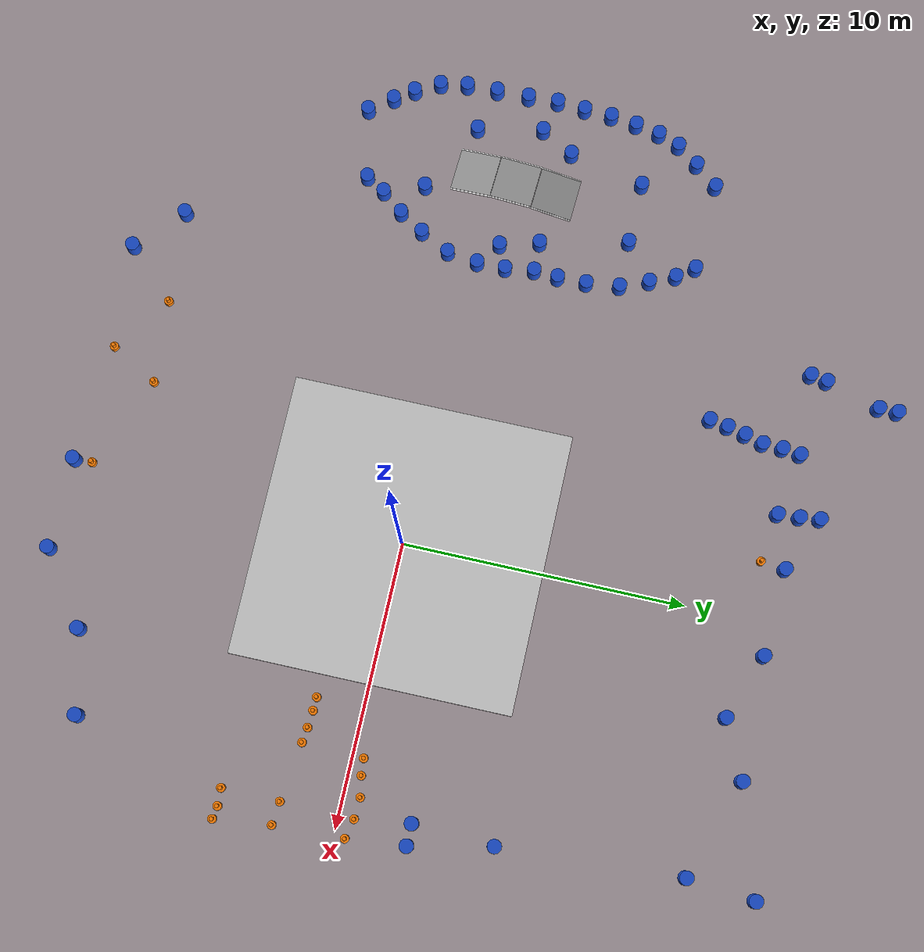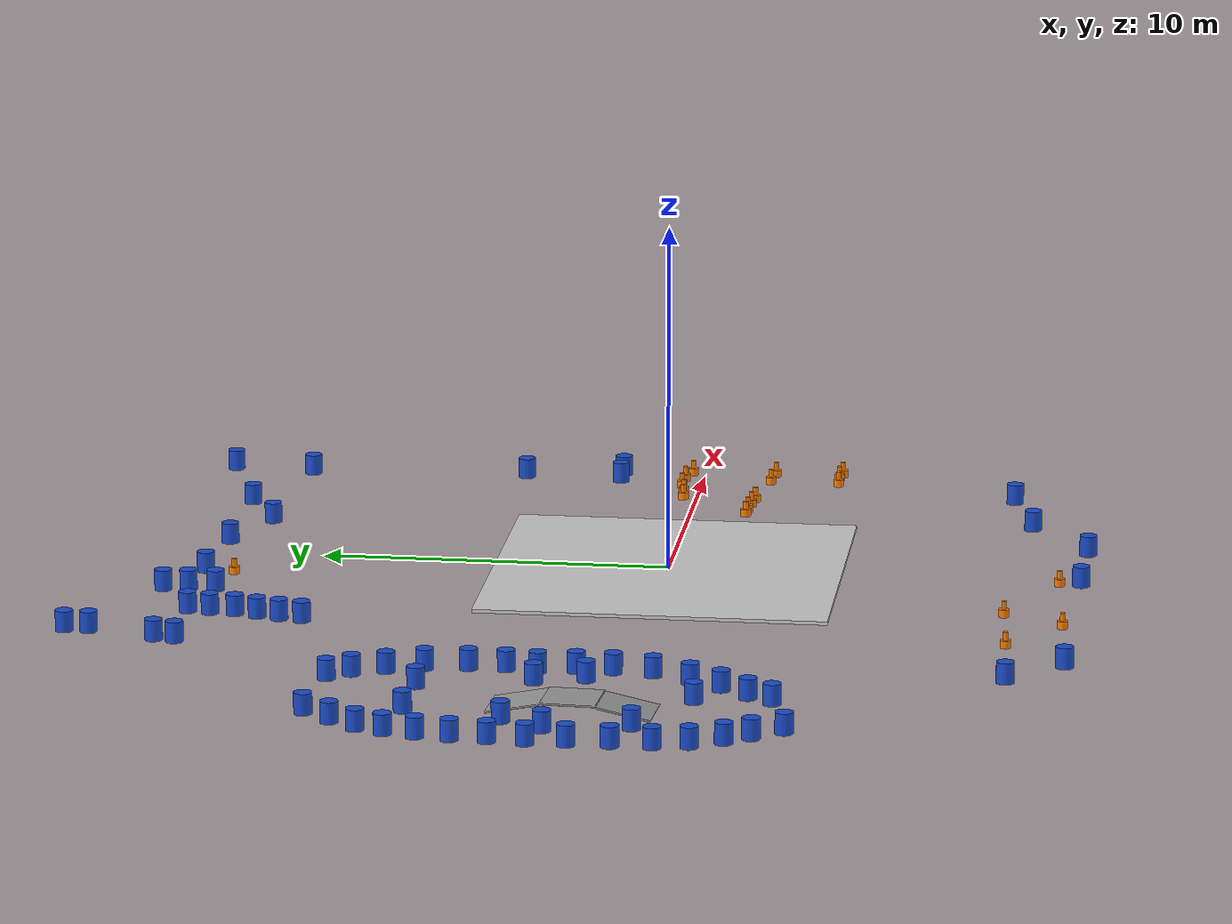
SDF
<?xml version="1.0" ?>
<sdf version="1.9">
  <world name="full_course">
    <!-- System plugins -->
    <plugin name='ignition::gazebo::systems::Physics'           filename='ignition-gazebo-physics-system'/>
    <plugin name='ignition::gazebo::systems::UserCommands'      filename='ignition-gazebo-user-commands-system'/>
    <plugin name='ignition::gazebo::systems::SceneBroadcaster'  filename='ignition-gazebo-scene-broadcaster-system'/>
    <plugin name="ignition::gazebo::systems::Contact"           filename="libignition-gazebo-contact-system.so"/>
    <plugin name="ignition::gazebo::systems::Sensors"           filename="ignition-gazebo-sensors-system"/>
    <plugin name="ignition::gazebo::systems::Imu"               filename="ignition-gazebo-imu-system"/>
    <plugin name="ignition::gazebo::systems::NavSat"            filename="ignition-gazebo-navsat-system" />

    <physics type="ode">
      <max_step_size>0.001</max_step_size>
      <real_time_update_rate>1000</real_time_update_rate>
    </physics>

    <scene>
      <ambient>0.1 0.1 0.1 0.1</ambient>
      <background>0.8 0.8 0.8 1.0</background>
      <grid>true</grid>
    </scene>

    <light type="directional" name="sun">
      <cast_shadows>true</cast_shadows>
      <pose>0 0 10 0 0 0</pose>
      <diffuse>1 1 1 1</diffuse>
      <specular>0.2 0.2 0.2 1</specular>
      <direction>-0.5 0.1 -0.9</direction>
    </light>

    <!-- Course (centered) and bounding tiles so no cliffs-->
    <include> <uri>model://floor</uri> <pose>0 0 0 0 0 0</pose> </include>

    <gui fullscreen='0'>
      <camera name='user_camera'>
        <pose>-5.2 -2.2 14.4 0 1.48 -0.02</pose>
        <view_controller>orbit</view_controller>
      </camera>
    </gui>

    <include>
      <uri>models://barrel</uri>
      <name>barrel</name>
      <pose>-9.96267 -10.2394 0 0 -0 0</pose>
    </include>
    <include>
      <uri>models://barrel</uri>
      <name>barrel_0</name>
      <pose>-8.35724 -11.7564 0 0 -0 0</pose>
    </include>
    <include>
      <uri>models://cone</uri>
      <name>cone</name>
      <pose>-6.68228 -10.0533 0 0 -0 0</pose>
    </include>
    <include>
      <uri>models://cone</uri>
      <name>cone_0</name>
      <pose>-4.65263 -11.516 0 0 -0 0</pose>
    </include>
    <include>
      <uri>models://cone</uri>
      <name>cone_1</name>
      <pose>-3.70712 -9.83601 0 0 -0 0</pose>
    </include>
    <include>
      <uri>models://cone</uri>
      <name>cone_2</name>
      <pose>-0.435755 -11.2176 0 0 -0 0</pose>
    </include>
    <include>
      <uri>models://barrel</uri>
      <name>barrel_1</name>
      <pose>-0.394324 -11.8301 0 0 -0 0</pose>
    </include>
    <include>
      <uri>models://barrel</uri>
      <name>barrel_2</name>
      <pose>2.82763 -11.8807 0 0 -0 0</pose>
    </include>
    <include>
      <uri>models://barrel</uri>
      <name>barrel_3</name>
      <pose>8.19254 -9.46416 0 0 -0 0</pose>
    </include>
    <include>
      <uri>models://barrel</uri>
      <name>barrel_4</name>
      <pose>5.31833 -10.1531 0 0 -0 0</pose>
    </include>
    <include>
      <uri>models://cone</uri>
      <name>cone_3</name>
      <pose>9.48845 -4.08395 0 0 -0 0</pose>
    </include>
    <include>
      <uri>models://cone</uri>
      <name>cone_4</name>
      <pose>10.0991 -4.05546 0 0 -0 0</pose>
    </include>
    <include>
      <uri>models://cone</uri>
      <name>cone_4_1</name>
      <pose>10.5517 -4.12295 0 0 -0 0</pose>
    </include>
    <include>
      <uri>models://cone</uri>
      <name>cone_4_2</name>
      <pose>5.81266 -1.64019 0 0 -0 0</pose>
    </include>
    <include>
      <uri>models://cone</uri>
      <name>cone_4_3</name>
      <pose>6.28362 -1.65373 0 0 -0 0</pose>
    </include>
    <include>
      <uri>models://cone</uri>
      <name>cone_4_4</name>
      <pose>6.87778 -1.70145 0 0 -0 0</pose>
    </include>
    <include>
      <uri>models://cone</uri>
      <name>cone_4_5</name>
      <pose>7.41087 -1.76907 0 0 -0 0</pose>
    </include>
    <include>
      <uri>models://cone</uri>
      <name>cone_4_6</name>
      <pose>9.4985 -2.03657 0 0 -0 0</pose>
    </include>
    <include>
      <uri>models://cone</uri>
      <name>cone_4_7</name>
      <pose>10.313 -2.11659 0 0 -0 0</pose>
    </include>
    <include>
      <uri>models://cone</uri>
      <name>cone_4_8</name>
      <pose>7.47129 0.397816 0 0 -0 0</pose>
    </include>
    <include>
      <uri>models://cone</uri>
      <name>cone_4_9</name>
      <pose>8.05773 0.45268 0 0 -0 0</pose>
    </include>
    <include>
      <uri>models://cone</uri>
      <name>cone_4_10</name>
      <pose>8.77515 0.587541 0 0 -0 0</pose>
    </include>
    <include>
      <uri>models://cone</uri>
      <name>cone_4_11</name>
      <pose>9.52197 0.550067 0 0 -0 0</pose>
    </include>
    <include>
      <uri>models://cone</uri>
      <name>cone_4_12</name>
      <pose>10.2197 0.391293 0 0 -0 0</pose>
    </include>
    <include>
      <uri>models://barrel</uri>
      <name>barrel_5</name>
      <pose>9.24418 2.48043 0 0 -0 0</pose>
    </include>
    <include>
      <uri>models://barrel</uri>
      <name>barrel_6</name>
      <pose>10.0015 2.47843 0 0 -0 0</pose>
    </include>
    <include>
      <uri>models://barrel</uri>
      <name>barrel_6_3</name>
      <pose>9.23198 14.2399 0 0 -0 0</pose>
    </include>
    <include>
      <uri>models://barrel</uri>
      <name>barrel_6_4</name>
      <pose>8.98621 11.8317 0 0 -0 0</pose>
    </include>
    <include>
      <uri>models://barrel</uri>
      <name>barrel_6_5</name>
      <pose>5.4479 13.0605 0 0 -0 0</pose>
    </include>
    <include>
      <uri>models://barrel</uri>
      <name>barrel_6_6</name>
      <pose>3.47212 12.1068 0 0 -0 0</pose>
    </include>
    <include>
      <uri>models://barrel</uri>
      <name>barrel_6_7</name>
      <pose>1.12975 12.9626 0 0 -0 0</pose>
    </include>
    <include>
      <uri>models://barrel</uri>
      <name>barrel_6_1</name>
      <pose>9.37504 5.35546 0 0 -0 0</pose>
    </include>
    <include>
      <uri>models://cone</uri>
      <name>cone_5</name>
      <pose>-2.09508 12.2666 0 0 -0 0</pose>
    </include>
    <include>
      <uri>models://barrel</uri>
      <name>barrel_7</name>
      <pose>-3.94179 13.9701 0 0 -0 0</pose>
    </include>
    <include>
      <uri>models://barrel</uri>
      <name>barrel_7_1</name>
      <pose>-3.8542 13.2631 0 0 -0 0</pose>
    </include>
    <include>
      <uri>models://barrel</uri>
      <name>barrel_7_2</name>
      <pose>-3.80086 12.4937 0 0 -0 0</pose>
    </include>
    <include>
      <uri>models://barrel</uri>
      <name>barrel_7_3</name>
      <pose>-6.04 12.8742 0 0 -0 0</pose>
    </include>
    <include>
      <uri>models://barrel</uri>
      <name>barrel_7_4</name>
      <pose>-6.12178 12.2277 0 0 -0 0</pose>
    </include>
    <include>
      <uri>models://barrel</uri>
      <name>barrel_7_5</name>
      <pose>-6.15044 11.5137 0 0 -0 0</pose>
    </include>
    <include>
      <uri>models://barrel</uri>
      <name>barrel_7_6</name>
      <pose>-6.32941 10.8543 0 0 -0 0</pose>
    </include>
    <include>
      <uri>models://barrel</uri>
      <name>barrel_7_7</name>
      <pose>-6.4755 10.2032 0 0 -0 0</pose>
    </include>
    <include>
      <uri>models://barrel</uri>
      <name>barrel_7_8</name>
      <pose>-8.2807 15.9259 0 0 -0 0</pose>
    </include>
    <include>
      <uri>models://barrel</uri>
      <name>barrel_7_9</name>
      <pose>-6.58798 9.55073 0 0 -0 0</pose>
    </include>
    <include>
      <uri>models://barrel</uri>
      <name>barrel_7_10</name>
      <pose>-8.93905 12.7004 0 0 -0 0</pose>
    </include>
    <include>
      <uri>models://barrel</uri>
      <name>barrel_7_11</name>
      <pose>-8.8356 13.3002 0 0 -0 0</pose>
    </include>
    <include>
      <uri>models://barrel</uri>
      <name>barrel_7_12</name>
      <pose>-8.27275 15.2438 0 0 -0 0</pose>
    </include>
    <include>
      <uri>models://barrel</uri>
      <name>barrel_7_13</name>
      <pose>-1.96288 13.1125 0 0 -0 0</pose>
    </include>
    <include>
      <uri>models://barrel</uri>
      <name>barrel_7_14</name>
      <pose>-11.9011 7.97168 0 0 -0 0</pose>
    </include>
    <include>
      <uri>models://barrel</uri>
      <name>barrel_7_15</name>
      <pose>-11.4382 7.35161 0 0 -0 0</pose>
    </include>
    <include>
      <uri>models://barrel</uri>
      <name>barrel_7_16</name>
      <pose>-11.0577 6.46842 0 0 -0 0</pose>
    </include>
    <include>
      <uri>models://barrel</uri>
      <name>barrel_7_17</name>
      <pose>-10.6541 5.47122 0 0 -0 0</pose>
    </include>
    <include>
      <uri>models://barrel</uri>
      <name>barrel_7_18</name>
      <pose>-10.5154 4.28525 0 0 -0 0</pose>
    </include>
    <include>
      <uri>models://barrel</uri>
      <name>barrel_7_19</name>
      <pose>-10.5012 3.25358 0 0 -0 0</pose>
    </include>
    <include>
      <uri>models://barrel</uri>
      <name>barrel_7_20</name>
      <pose>-10.5668 2.38582 0 0 -0 0</pose>
    </include>
    <include>
      <uri>models://barrel</uri>
      <name>barrel_7_21</name>
      <pose>-10.4225 1.35623 0 0 -0 0</pose>
    </include>
    <include>
      <uri>models://barrel</uri>
      <name>barrel_7_22</name>
      <pose>-10.4184 0.338595 0 0 -0 0</pose>
    </include>
    <include>
      <uri>models://barrel</uri>
      <name>barrel_7_23</name>
      <pose>-10.5732 -0.764844 0 0 -0 0</pose>
    </include>
    <include>
      <uri>models://barrel</uri>
      <name>barrel_7_24</name>
      <pose>-11.1043 -1.83167 0 0 -0 0</pose>
    </include>
    <include>
      <uri>models://barrel</uri>
      <name>barrel_7_25</name>
      <pose>-11.6451 -2.71624 0 0 -0 0</pose>
    </include>
    <include>
      <uri>models://barrel</uri>
      <name>barrel_7_26</name>
      <pose>-12.2752 -3.50023 0 0 -0 0</pose>
    </include>
    <include>
      <uri>models://barrel</uri>
      <name>barrel_7_27</name>
      <pose>-12.6936 -4.19322 0 0 -0 0</pose>
    </include>
    <include>
      <uri>models://barrel</uri>
      <name>barrel_7_28</name>
      <pose>-15.0465 8.06932 0 0 -0 0</pose>
    </include>
    <include>
      <uri>models://barrel</uri>
      <name>barrel_7_29</name>
      <pose>-15.716 7.25742 0 0 -0 0</pose>
    </include>
    <include>
      <uri>models://barrel</uri>
      <name>barrel_7_30</name>
      <pose>-16.2807 6.4781 0 0 -0 0</pose>
    </include>
    <include>
      <uri>models://barrel</uri>
      <name>barrel_7_31</name>
      <pose>-16.5642 5.70083 0 0 -0 0</pose>
    </include>
    <include>
      <uri>models://barrel</uri>
      <name>barrel_7_32</name>
      <pose>-16.731 4.82347 0 0 -0 0</pose>
    </include>
    <include>
      <uri>models://barrel</uri>
      <name>barrel_7_33</name>
      <pose>-16.8522 3.8879 0 0 -0 0</pose>
    </include>
    <include>
      <uri>models://barrel</uri>
      <name>barrel_7_34</name>
      <pose>-16.8955 2.89201 0 0 -0 0</pose>
    </include>
    <include>
      <uri>models://barrel</uri>
      <name>barrel_7_35</name>
      <pose>-16.9698 1.88108 0 0 -0 0</pose>
    </include>
    <include>
      <uri>models://barrel</uri>
      <name>barrel_7_36</name>
      <pose>-16.9293 0.807501 0 0 -0 0</pose>
    </include>
    <include>
      <uri>models://barrel</uri>
      <name>barrel_7_37</name>
      <pose>-16.9081 -0.347231 0 0 -0 0</pose>
    </include>
    <include>
      <uri>models://barrel</uri>
      <name>barrel_7_38</name>
      <pose>-16.876 -1.4528 0 0 -0 0</pose>
    </include>
    <include>
      <uri>models://barrel</uri>
      <name>barrel_7_39</name>
      <pose>-16.7142 -2.40915 0 0 -0 0</pose>
    </include>
    <include>
      <uri>models://barrel</uri>
      <name>barrel_7_40</name>
      <pose>-16.2619 -3.26786 0 0 -0 0</pose>
    </include>
    <include>
      <uri>models://barrel</uri>
      <name>barrel_7_41</name>
      <pose>-15.7945 -3.94161 0 0 -0 0</pose>
    </include>
    <include>
      <uri>models://barrel</uri>
      <name>barrel_7_42</name>
      <pose>-15.1931 -4.75032 0 0 -0 0</pose>
    </include>
    <include>
      <uri>models://barrel</uri>
      <name>barrel_7_43</name>
      <pose>-15.3396 -0.728096 0 0 -0 0</pose>
    </include>
    <include>
      <uri>models://barrel</uri>
      <name>barrel_7_44</name>
      <pose>-12.8114 -2.10477 0 0 -0 0</pose>
    </include>
    <include>
      <uri>models://ramp</uri>
      <name>ramp</name>
      <pose>-13.6752 1.04703 0 0 -0 1.51237</pose>
    </include>
    <include>
      <uri>models://barrel</uri>
      <name>barrel_7_43_1</name>
      <pose>-14.5401 5.47871 0 0 -0 0</pose>
    </include>
    <include>
      <uri>models://barrel</uri>
      <name>barrel_7_43_2</name>
      <pose>-12.3423 5.45713 0 0 -0 0</pose>
    </include>
    <include>
      <uri>models://barrel</uri>
      <name>barrel_7_43_3</name>
      <pose>-15.1315 2.77295 0 0 -0 0</pose>
    </include>
    <include>
      <uri>models://barrel</uri>
      <name>barrel_7_43_4</name>
      <pose>-15.7928 1.59251 0 0 -0 0</pose>
    </include>
    <include>
      <uri>models://barrel</uri>
      <name>barrel_7_43_5</name>
      <pose>-11.6192 2.36049 0 0 -0 0</pose>
    </include>
    <include>
      <uri>models://barrel</uri>
      <name>barrel_7_43_6</name>
      <pose>-11.2388 0.978072 0 0 -0 0</pose>
    </include>

  </world>
</sdf>

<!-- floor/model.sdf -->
<sdf version="1.9">
  <model name="floor">
    <static>true</static>
    <link name="course_floor">
      <collision name="floor_collision">
        <geometry>
          <box>
            <size>10 10 0.1</size>
          </box>
        </geometry>
      </collision>

      <visual name="visual">
        <geometry>
          <box>
            <size>10 10 0.1</size>
          </box>
        </geometry>

        <material>
          <ambient>0.1 0.1 0.1 1</ambient>
          <diffuse>0.8 0.8 0.8 1</diffuse>
          <specular>0.1 0.1 0.1 1</specular>

          <pbr>
            <metal>
              <albedo_map>materials/textures/floor_picture.png</albedo_map>
              <roughness>0.9</roughness>
              <metalness>0.0</metalness>
            </metal>
          </pbr>
        </material>

      </visual>
    </link>
  </model>
</sdf>

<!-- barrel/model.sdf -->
<sdf version="1.8">
  <model name="barrel">
    <static>true</static>
    <link name="link">
      <collision name="collision">
        <geometry>
          <cylinder>
            <radius>0.25</radius>
            <length>0.6</length>
          </cylinder>
        </geometry>
        <pose>0 0 0.3 0 0 0</pose>
      </collision>
      <visual name="visual">
        <geometry>
          <cylinder>
            <radius>0.25</radius>
            <length>0.6</length>
          </cylinder>
        </geometry>
        <pose>0 0 0.3 0 0 0</pose>
        <material>
          <ambient>0.1 0.3 0.8 1</ambient>
          <diffuse>0.1 0.3 0.8 1</diffuse>
          <specular>0.3 0.3 0.3 1</specular>
        </material>
      </visual>
    </link>
  </model>
</sdf>

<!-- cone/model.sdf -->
<sdf version="1.8">
  <model name="cone">
    <static>true</static>
    <link name="link">
      <!-- Base cylinder (wider bottom) -->
      <collision name="collision_base">
        <geometry>
          <cylinder>
            <radius>0.15</radius>
            <length>0.22</length>
          </cylinder>
        </geometry>
        <pose>0 0 0.11 0 0 0</pose>
      </collision>
      <visual name="visual_base">
        <geometry>
          <cylinder>
            <radius>0.15</radius>
            <length>0.22</length>
          </cylinder>
        </geometry>
        <pose>0 0 0.11 0 0 0</pose>
        <material>
          <ambient>1.0 0.5 0.0 1</ambient>
          <diffuse>1.0 0.5 0.0 1</diffuse>
          <specular>0.3 0.3 0.3 1</specular>
        </material>
      </visual>
      <!-- Top cylinder (narrower top) -->
      <collision name="collision_top">
        <geometry>
          <cylinder>
            <radius>0.07</radius>
            <length>0.23</length>
          </cylinder>
        </geometry>
        <pose>0 0 0.335 0 0 0</pose>
      </collision>
      <visual name="visual_top">
        <geometry>
          <cylinder>
            <radius>0.07</radius>
            <length>0.23</length>
          </cylinder>
        </geometry>
        <pose>0 0 0.335 0 0 0</pose>
        <material>
          <ambient>1.0 0.5 0.0 1</ambient>
          <diffuse>1.0 0.5 0.0 1</diffuse>
          <specular>0.3 0.3 0.3 1</specular>
        </material>
      </visual>
    </link>
  </model>
</sdf>

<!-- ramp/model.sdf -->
<sdf version="1.6">
  <model name="ramp">
    <static>true</static>

    <!-- Up slope -->
    <link name="up_slope">
      <pose>-1.5 0 0.125 0 -0.1963 0</pose>
      <collision name="ramp_collision">
        <geometry><box><size>1.5 1.5 0.05</size></box></geometry>
        <surface>
          <friction><ode><mu>1.0</mu><mu2>1.0</mu2></ode></friction>
        </surface>
      </collision>
      <visual name="visual">
        <geometry><box><size>1.5 1.5 0.05</size></box></geometry>
        <material>
          <ambient>0.5 0.5 0.5 1</ambient>
          <diffuse>0.6 0.6 0.6 1</diffuse>
        </material>
      </visual>
    </link>

    <!-- Up slope lane lines -->
    <link name="up_slope_lane_left">
      <pose>-1.5 0.75 0.125 0 -0.1963 0</pose>
      <visual name="visual">
        <geometry><box><size>1.5 0.1 0.01</size></box></geometry>
        <material>
          <ambient>1 1 1 1</ambient>
          <diffuse>1 1 1 1</diffuse>
          <emissive>1 1 1 1</emissive>
        </material>
      </visual>
    </link>
    <link name="up_slope_lane_right">
      <pose>-1.5 -0.75 0.125 0 -0.1963 0</pose>
      <visual name="visual">
        <geometry><box><size>1.5 0.1 0.01</size></box></geometry>
        <material>
          <ambient>1 1 1 1</ambient>
          <diffuse>1 1 1 1</diffuse>
          <emissive>1 1 1 1</emissive>
        </material>
      </visual>
    </link>

    <!-- Flat top -->
    <link name="flat_top">
      <pose>0 0 0.3 0 0 0</pose>
      <collision name="ramp_collision">
        <geometry><box><size>1.5 1.5 0.05</size></box></geometry>
        <surface>
          <friction><ode><mu>1.0</mu><mu2>1.0</mu2></ode></friction>
        </surface>
      </collision>
      <visual name="visual">
        <geometry><box><size>1.5 1.5 0.05</size></box></geometry>
        <material>
          <ambient>0.5 0.5 0.5 1</ambient>
          <diffuse>0.6 0.6 0.6 1</diffuse>
        </material>
      </visual>
    </link>

    <!-- Flat top lane lines -->
    <link name="flat_top_lane_left">
      <pose>0 0.75 0.3 0 0 0</pose>
      <visual name="visual">
        <geometry><box><size>1.5 0.1 0.01</size></box></geometry>
        <material>
          <ambient>1 1 1 1</ambient>
          <diffuse>1 1 1 1</diffuse>
          <emissive>1 1 1 1</emissive>
        </material>
      </visual>
    </link>
    <link name="flat_top_lane_right">
      <pose>0 -0.75 0.3 0 0 0</pose>
      <visual name="visual">
        <geometry><box><size>1.5 0.1 0.01</size></box></geometry>
        <material>
          <ambient>1 1 1 1</ambient>
          <diffuse>1 1 1 1</diffuse>
          <emissive>1 1 1 1</emissive>
        </material>
      </visual>
    </link>

    <!-- Down slope -->
    <link name="down_slope">
      <pose>1.5 0 0.125 0 0.1963 0</pose>
      <collision name="ramp_collision">
        <geometry><box><size>1.5 1.5 0.05</size></box></geometry>
        <surface>
          <friction><ode><mu>1.0</mu><mu2>1.0</mu2></ode></friction>
        </surface>
      </collision>
      <visual name="visual">
        <geometry><box><size>1.5 1.5 0.05</size></box></geometry>
        <material>
          <ambient>0.5 0.5 0.5 1</ambient>
          <diffuse>0.6 0.6 0.6 1</diffuse>
        </material>
      </visual>
    </link>

    <!-- Down slope lane lines -->
    <link name="down_slope_lane_left">
      <pose>1.5 0.75 0.125 0 0.1963 0</pose>
      <visual name="visual">
        <geometry><box><size>1.5 0.1 0.01</size></box></geometry>
        <material>
          <ambient>1 1 1 1</ambient>
          <diffuse>1 1 1 1</diffuse>
          <emissive>1 1 1 1</emissive>
        </material>
      </visual>
    </link>
    <link name="down_slope_lane_right">
      <pose>1.5 -0.75 0.125 0 0.1963 0</pose>
      <visual name="visual">
        <geometry><box><size>1.5 0.1 0.01</size></box></geometry>
        <material>
          <ambient>1 1 1 1</ambient>
          <diffuse>1 1 1 1</diffuse>
          <emissive>1 1 1 1</emissive>
        </material>
      </visual>
    </link>

  </model>
</sdf>
